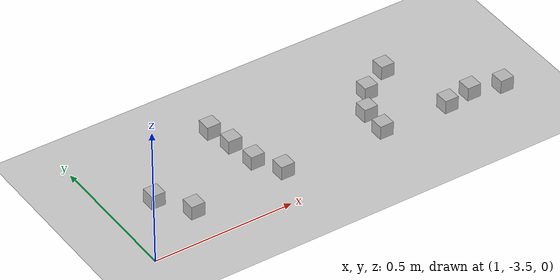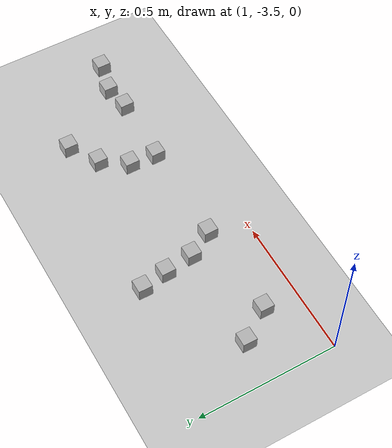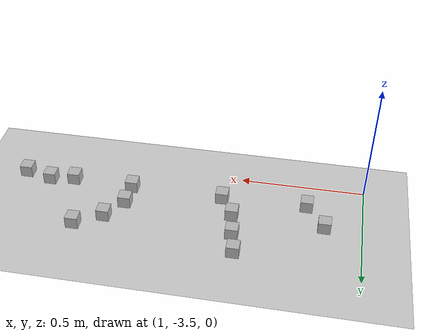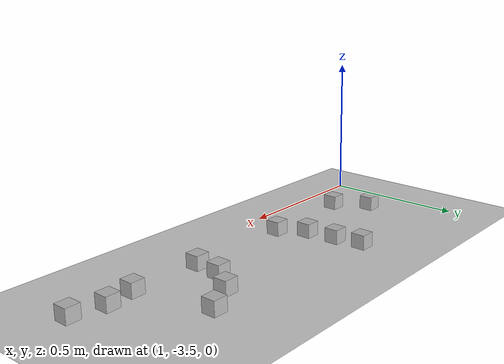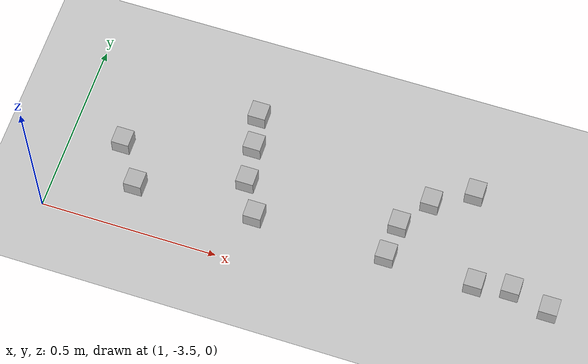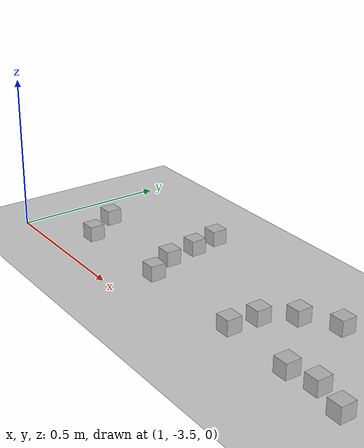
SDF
<sdf version="1.4">
 <world name="default">
  <model name="ground_plane">
   <static>1</static>
   <link name="link">
    <collision name="collision">
     <geometry><plane><normal>0 0 1</normal><size>100 100</size></plane></geometry>
     <surface><friction><ode><mu>100</mu><mu2>50</mu2></ode></friction></surface>
    </collision>
    <visual name="visual">
     <cast_shadows>0</cast_shadows>
     <geometry><plane><normal>0 0 1</normal><size>100 100</size></plane></geometry>
     <material>
      <script><uri>file://media/materials/scripts/gazebo.material</uri><name>Gazebo/Grey</name></script>
     </material>
    </visual>
    <velocity_decay><linear>0</linear><angular>0</angular></velocity_decay>
   </link>
  </model>
  <model name="at44">
   <static>0</static>
   <link name="link">
    <inertial>
     <mass>0.01</mass>
     <inertia><ixx>4e-05</ixx><ixy>0</ixy><ixz>0</ixz><iyy>4e-05</iyy><iyz>0</iyz><izz>4e-05</izz></inertia>
    </inertial>
    <visual name="visual">
     <geometry><box><size>0.05 0.05 0.05</size></box></geometry>
     <material>
      <script>
       <uri>model://at0/materials/scripts</uri>
       <uri>model://at0/materials/textures</uri>
       <name>at0/Diffuse</name>
      </script>
     </material>
    </visual>
    <collision name="collision">
     <geometry><box><size>0.05 0.05 0.05</size></box></geometry>
     <surface><friction><ode><mu>0.8</mu><mu2>0.7</mu2></ode></friction></surface>
    </collision>
    <velocity_decay><linear>0</linear><angular>0</angular></velocity_decay>
   </link>
   <pose>1.14827 -3.25925 0.025 0 -0 0</pose>
  </model>
  <model name="at112">
   <static>0</static>
   <link name="link">
    <inertial>
     <mass>0.01</mass>
     <inertia><ixx>4e-05</ixx><ixy>0</ixy><ixz>0</ixz><iyy>4e-05</iyy><iyz>0</iyz><izz>4e-05</izz></inertia>
    </inertial>
    <visual name="visual">
     <geometry><box><size>0.05 0.05 0.05</size></box></geometry>
     <material>
      <script>
       <uri>model://at0/materials/scripts</uri>
       <uri>model://at0/materials/textures</uri>
       <name>at0/Diffuse</name>
      </script>
     </material>
    </visual>
    <collision name="collision">
     <geometry><box><size>0.05 0.05 0.05</size></box></geometry>
     <surface><friction><ode><mu>0.8</mu><mu2>0.7</mu2></ode></friction></surface>
    </collision>
    <velocity_decay><linear>0</linear><angular>0</angular></velocity_decay>
   </link>
   <pose>1.47893 -3.06524 0.025 0 -0 0</pose>
  </model>
  <model name="at113">
   <static>0</static>
   <link name="link">
    <inertial>
     <mass>0.01</mass>
     <inertia><ixx>4e-05</ixx><ixy>0</ixy><ixz>0</ixz><iyy>4e-05</iyy><iyz>0</iyz><izz>4e-05</izz></inertia>
    </inertial>
    <visual name="visual">
     <geometry><box><size>0.05 0.05 0.05</size></box></geometry>
     <material>
      <script>
       <uri>model://at0/materials/scripts</uri>
       <uri>model://at0/materials/textures</uri>
       <name>at0/Diffuse</name>
      </script>
     </material>
    </visual>
    <collision name="collision">
     <geometry><box><size>0.05 0.05 0.05</size></box></geometry>
     <surface><friction><ode><mu>0.8</mu><mu2>0.7</mu2></ode></friction></surface>
    </collision>
    <velocity_decay><linear>0</linear><angular>0</angular></velocity_decay>
   </link>
   <pose>1.49712 -3.16125 0.025 0 -0 0</pose>
  </model>
  <model name="at114">
   <static>0</static>
   <link name="link">
    <inertial>
     <mass>0.01</mass>
     <inertia><ixx>4e-05</ixx><ixy>0</ixy><ixz>0</ixz><iyy>4e-05</iyy><iyz>0</iyz><izz>4e-05</izz></inertia>
    </inertial>
    <visual name="visual">
     <geometry><box><size>0.05 0.05 0.05</size></box></geometry>
     <material>
      <script>
       <uri>model://at0/materials/scripts</uri>
       <uri>model://at0/materials/textures</uri>
       <name>at0/Diffuse</name>
      </script>
     </material>
    </visual>
    <collision name="collision">
     <geometry><box><size>0.05 0.05 0.05</size></box></geometry>
     <surface><friction><ode><mu>0.8</mu><mu2>0.7</mu2></ode></friction></surface>
    </collision>
    <velocity_decay><linear>0</linear><angular>0</angular></velocity_decay>
   </link>
   <pose>1.51244 -3.26748 0.025 0 -0 0</pose>
  </model>
  <model name="at115">
   <static>0</static>
   <link name="link">
    <inertial>
     <mass>0.01</mass>
     <inertia><ixx>4e-05</ixx><ixy>0</ixy><ixz>0</ixz><iyy>4e-05</iyy><iyz>0</iyz><izz>4e-05</izz></inertia>
    </inertial>
    <visual name="visual">
     <geometry><box><size>0.05 0.05 0.05</size></box></geometry>
     <material>
      <script>
       <uri>model://at0/materials/scripts</uri>
       <uri>model://at0/materials/textures</uri>
       <name>at0/Diffuse</name>
      </script>
     </material>
    </visual>
    <collision name="collision">
     <geometry><box><size>0.05 0.05 0.05</size></box></geometry>
     <surface><friction><ode><mu>0.8</mu><mu2>0.7</mu2></ode></friction></surface>
    </collision>
    <velocity_decay><linear>0</linear><angular>0</angular></velocity_decay>
   </link>
   <pose>1.56467 -3.36045 0.025 0 -0 0</pose>
  </model>
  <model name="at123">
   <static>0</static>
   <link name="link">
    <inertial>
     <mass>0.01</mass>
     <inertia><ixx>4e-05</ixx><ixy>0</ixy><ixz>0</ixz><iyy>4e-05</iyy><iyz>0</iyz><izz>4e-05</izz></inertia>
    </inertial>
    <visual name="visual">
     <geometry><box><size>0.05 0.05 0.05</size></box></geometry>
     <material>
      <script>
       <uri>model://at0/materials/scripts</uri>
       <uri>model://at0/materials/textures</uri>
       <name>at0/Diffuse</name>
      </script>
     </material>
    </visual>
    <collision name="collision">
     <geometry><box><size>0.05 0.05 0.05</size></box></geometry>
     <surface><friction><ode><mu>0.8</mu><mu2>0.7</mu2></ode></friction></surface>
    </collision>
    <velocity_decay><linear>0</linear><angular>0</angular></velocity_decay>
   </link>
   <pose>2.11692 -3.11196 0.025 0 -0 0</pose>
  </model>
  <model name="at124">
   <static>0</static>
   <link name="link">
    <inertial>
     <mass>0.01</mass>
     <inertia><ixx>4e-05</ixx><ixy>0</ixy><ixz>0</ixz><iyy>4e-05</iyy><iyz>0</iyz><izz>4e-05</izz></inertia>
    </inertial>
    <visual name="visual">
     <geometry><box><size>0.05 0.05 0.05</size></box></geometry>
     <material>
      <script>
       <uri>model://at0/materials/scripts</uri>
       <uri>model://at0/materials/textures</uri>
       <name>at0/Diffuse</name>
      </script>
     </material>
    </visual>
    <collision name="collision">
     <geometry><box><size>0.05 0.05 0.05</size></box></geometry>
     <surface><friction><ode><mu>0.8</mu><mu2>0.7</mu2></ode></friction></surface>
    </collision>
    <velocity_decay><linear>0</linear><angular>0</angular></velocity_decay>
   </link>
   <pose>2.00952 -3.17454 0.025 0 -0 0</pose>
  </model>
  <model name="at125">
   <static>0</static>
   <link name="link">
    <inertial>
     <mass>0.01</mass>
     <inertia><ixx>4e-05</ixx><ixy>0</ixy><ixz>0</ixz><iyy>4e-05</iyy><iyz>0</iyz><izz>4e-05</izz></inertia>
    </inertial>
    <visual name="visual">
     <geometry><box><size>0.05 0.05 0.05</size></box></geometry>
     <material>
      <script>
       <uri>model://at0/materials/scripts</uri>
       <uri>model://at0/materials/textures</uri>
       <name>at0/Diffuse</name>
      </script>
     </material>
    </visual>
    <collision name="collision">
     <geometry><box><size>0.05 0.05 0.05</size></box></geometry>
     <surface><friction><ode><mu>0.8</mu><mu2>0.7</mu2></ode></friction></surface>
    </collision>
    <velocity_decay><linear>0</linear><angular>0</angular></velocity_decay>
   </link>
   <pose>1.94577 -3.26623 0.025 0 -0 0</pose>
  </model>
  <model name="at126">
   <static>0</static>
   <link name="link">
    <inertial>
     <mass>0.01</mass>
     <inertia><ixx>4e-05</ixx><ixy>0</ixy><ixz>0</ixz><iyy>4e-05</iyy><iyz>0</iyz><izz>4e-05</izz></inertia>
    </inertial>
    <visual name="visual">
     <geometry><box><size>0.05 0.05 0.05</size></box></geometry>
     <material>
      <script>
       <uri>model://at0/materials/scripts</uri>
       <uri>model://at0/materials/textures</uri>
       <name>at0/Diffuse</name>
      </script>
     </material>
    </visual>
    <collision name="collision">
     <geometry><box><size>0.05 0.05 0.05</size></box></geometry>
     <surface><friction><ode><mu>0.8</mu><mu2>0.7</mu2></ode></friction></surface>
    </collision>
    <velocity_decay><linear>0</linear><angular>0</angular></velocity_decay>
   </link>
   <pose>1.93897 -3.36443 0.025 0 -0 0</pose>
  </model>
  <model name="at129">
   <static>0</static>
   <link name="link">
    <inertial>
     <mass>0.01</mass>
     <inertia><ixx>4e-05</ixx><ixy>0</ixy><ixz>0</ixz><iyy>4e-05</iyy><iyz>0</iyz><izz>4e-05</izz></inertia>
    </inertial>
    <visual name="visual">
     <geometry><box><size>0.05 0.05 0.05</size></box></geometry>
     <material>
      <script>
       <uri>model://at0/materials/scripts</uri>
       <uri>model://at0/materials/textures</uri>
       <name>at0/Diffuse</name>
      </script>
     </material>
    </visual>
    <collision name="collision">
     <geometry><box><size>0.05 0.05 0.05</size></box></geometry>
     <surface><friction><ode><mu>0.8</mu><mu2>0.7</mu2></ode></friction></surface>
    </collision>
    <velocity_decay><linear>0</linear><angular>0</angular></velocity_decay>
   </link>
   <pose>2.18692 -3.37161 0.025 0 -0 0</pose>
  </model>
  <model name="at130">
   <static>0</static>
   <link name="link">
    <inertial>
     <mass>0.01</mass>
     <inertia><ixx>4e-05</ixx><ixy>0</ixy><ixz>0</ixz><iyy>4e-05</iyy><iyz>0</iyz><izz>4e-05</izz></inertia>
    </inertial>
    <visual name="visual">
     <geometry><box><size>0.05 0.05 0.05</size></box></geometry>
     <material>
      <script>
       <uri>model://at0/materials/scripts</uri>
       <uri>model://at0/materials/textures</uri>
       <name>at0/Diffuse</name>
      </script>
     </material>
    </visual>
    <collision name="collision">
     <geometry><box><size>0.05 0.05 0.05</size></box></geometry>
     <surface><friction><ode><mu>0.8</mu><mu2>0.7</mu2></ode></friction></surface>
    </collision>
    <velocity_decay><linear>0</linear><angular>0</angular></velocity_decay>
   </link>
   <pose>2.28564 -3.35682 0.025 0 -0 0</pose>
  </model>
  <model name="at131">
   <static>0</static>
   <link name="link">
    <inertial>
     <mass>0.01</mass>
     <inertia><ixx>4e-05</ixx><ixy>0</ixy><ixz>0</ixz><iyy>4e-05</iyy><iyz>0</iyz><izz>4e-05</izz></inertia>
    </inertial>
    <visual name="visual">
     <geometry><box><size>0.05 0.05 0.05</size></box></geometry>
     <material>
      <script>
       <uri>model://at0/materials/scripts</uri>
       <uri>model://at0/materials/textures</uri>
       <name>at0/Diffuse</name>
      </script>
     </material>
    </visual>
    <collision name="collision">
     <geometry><box><size>0.05 0.05 0.05</size></box></geometry>
     <surface><friction><ode><mu>0.8</mu><mu2>0.7</mu2></ode></friction></surface>
    </collision>
    <velocity_decay><linear>0</linear><angular>0</angular></velocity_decay>
   </link>
   <pose>2.39591 -3.38451 0.025 0 -0 0</pose>
  </model>
  <model name="at229">
   <static>0</static>
   <link name="link">
    <inertial>
     <mass>0.01</mass>
     <inertia><ixx>4e-05</ixx><ixy>0</ixy><ixz>0</ixz><iyy>4e-05</iyy><iyz>0</iyz><izz>4e-05</izz></inertia>
    </inertial>
    <visual name="visual">
     <geometry><box><size>0.05 0.05 0.05</size></box></geometry>
     <material>
      <script>
       <uri>model://at0/materials/scripts</uri>
       <uri>model://at0/materials/textures</uri>
       <name>at0/Diffuse</name>
      </script>
     </material>
    </visual>
    <collision name="collision">
     <geometry><box><size>0.05 0.05 0.05</size></box></geometry>
     <surface><friction><ode><mu>0.8</mu><mu2>0.7</mu2></ode></friction></surface>
    </collision>
    <velocity_decay><linear>0</linear><angular>0</angular></velocity_decay>
   </link>
   <pose>1.22455 -3.37008 0.025 0 -0 0</pose>
  </model>
 </world>
</sdf>
